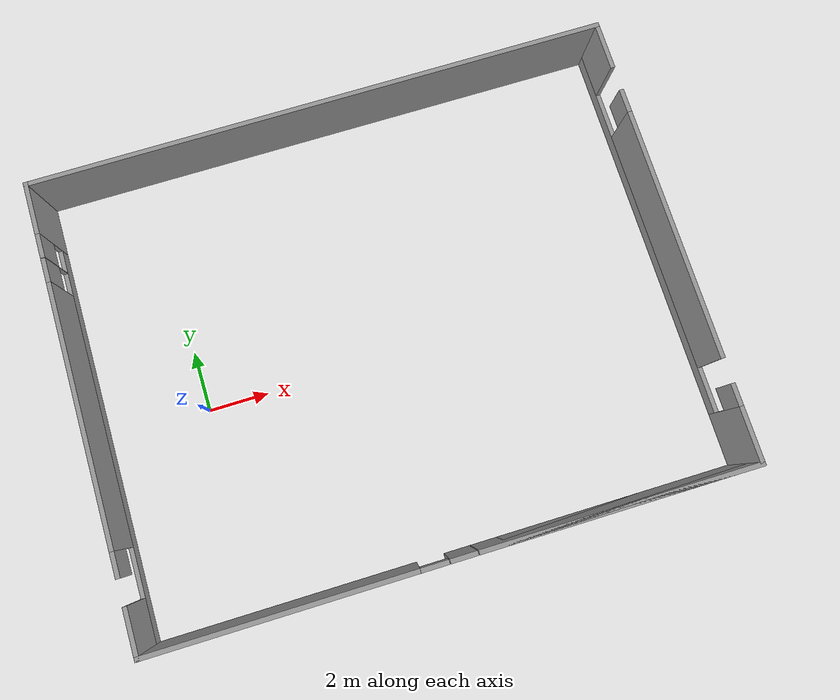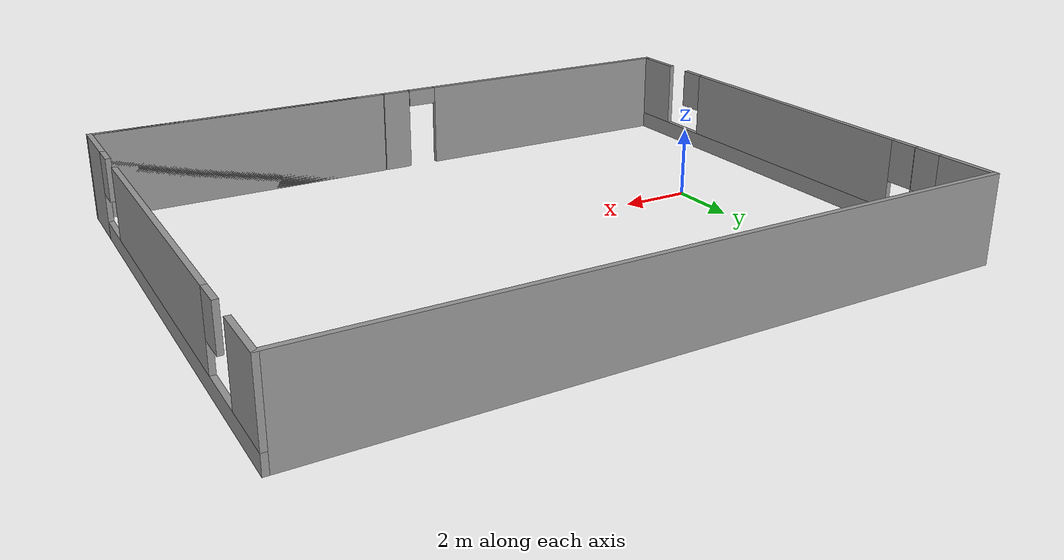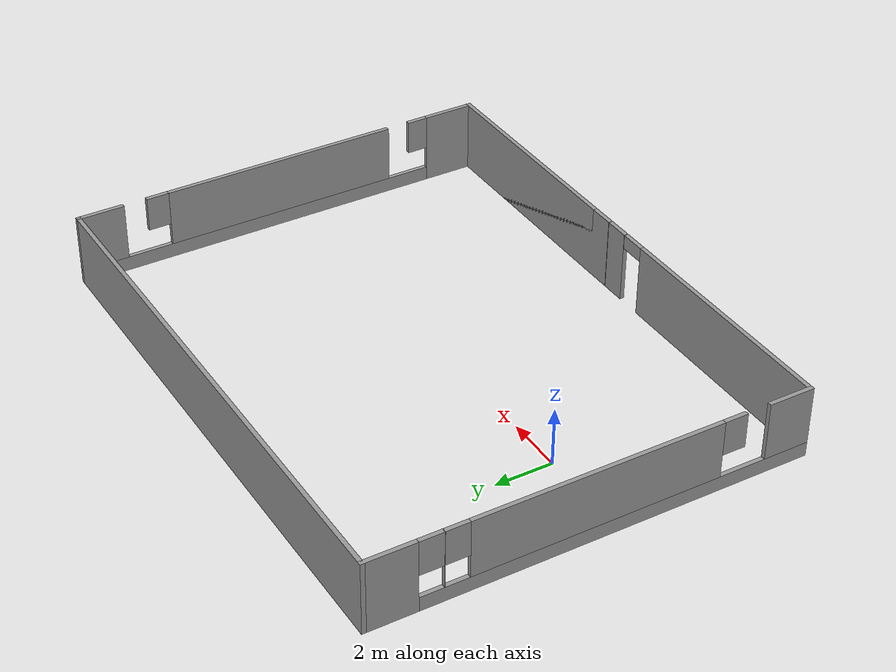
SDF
<?xml version='1.0'?>
<sdf version='1.6'>
  <model name='workspace2.0'>
    <pose frame=''>6.18297 0.808242 0 0 -0 0</pose>
    <link name='Wall_12'>
      <pose frame=''>9.55 0 0 0 -0 1.5708</pose>
      <visual name='Wall_12_Visual_0'>
        <pose frame=''>-6.566 0 1.25 0 -0 0</pose>
        <geometry>
          <box>
            <size>1.8685 0.15 2.5</size>
          </box>
        </geometry>
        <material>
          <script>
            <uri>file://media/materials/scripts/gazebo.material</uri>
            <name>Gazebo/Grey</name>
          </script>
          <ambient>1 1 1 1</ambient>
        </material>
        <meta>
          <layer>0</layer>
        </meta>
      </visual>
      <collision name='Wall_12_Collision_0'>
        <geometry>
          <box>
            <size>1.8685 0.15 2.5</size>
          </box>
        </geometry>
        <pose frame=''>-6.566 0 1.25 0 -0 0</pose>
      </collision>
      <visual name='Wall_12_Visual_1'>
        <pose frame=''>0.934248 0 0.25 0 -0 0</pose>
        <geometry>
          <box>
            <size>13.132 0.15 0.5</size>
          </box>
        </geometry>
        <material>
          <script>
            <uri>file://media/materials/scripts/gazebo.material</uri>
            <name>Gazebo/Grey</name>
          </script>
          <ambient>1 1 1 1</ambient>
        </material>
        <meta>
          <layer>0</layer>
        </meta>
      </visual>
      <collision name='Wall_12_Collision_1'>
        <geometry>
          <box>
            <size>13.132 0.15 0.5</size>
          </box>
        </geometry>
        <pose frame=''>0.934248 0 0.25 0 -0 0</pose>
      </collision>
      <visual name='Wall_12_Visual_2'>
        <pose frame=''>0.072569 0 1.5 0 -0 0</pose>
        <geometry>
          <box>
            <size>8.36165 0.15 2</size>
          </box>
        </geometry>
        <material>
          <script>
            <uri>file://media/materials/scripts/gazebo.material</uri>
            <name>Gazebo/Grey</name>
          </script>
          <ambient>1 1 1 1</ambient>
        </material>
        <meta>
          <layer>0</layer>
        </meta>
      </visual>
      <collision name='Wall_12_Collision_2'>
        <geometry>
          <box>
            <size>8.36165 0.15 2</size>
          </box>
        </geometry>
        <pose frame=''>0.072569 0 1.5 0 -0 0</pose>
      </collision>
      <visual name='Wall_12_Visual_3'>
        <pose frame=''>6.67282 0 1.5 0 -0 0</pose>
        <geometry>
          <box>
            <size>1.65485 0.15 2</size>
          </box>
        </geometry>
        <material>
          <script>
            <uri>file://media/materials/scripts/gazebo.material</uri>
            <name>Gazebo/Grey</name>
          </script>
          <ambient>1 1 1 1</ambient>
        </material>
        <meta>
          <layer>0</layer>
        </meta>
      </visual>
      <collision name='Wall_12_Collision_3'>
        <geometry>
          <box>
            <size>1.65485 0.15 2</size>
          </box>
        </geometry>
        <pose frame=''>6.67282 0 1.5 0 -0 0</pose>
      </collision>
      <visual name='Wall_12_Visual_4'>
        <pose frame=''>-5.27 0 1.9 0 -0 0</pose>
        <geometry>
          <box>
            <size>0.72349 0.15 1.2</size>
          </box>
        </geometry>
        <material>
          <script>
            <uri>file://media/materials/scripts/gazebo.material</uri>
            <name>Gazebo/Grey</name>
          </script>
          <ambient>1 1 1 1</ambient>
        </material>
        <meta>
          <layer>0</layer>
        </meta>
      </visual>
      <collision name='Wall_12_Collision_4'>
        <geometry>
          <box>
            <size>0.72349 0.15 1.2</size>
          </box>
        </geometry>
        <pose frame=''>-5.27 0 1.9 0 -0 0</pose>
      </collision>
      <visual name='Wall_12_Visual_5'>
        <pose frame=''>4.64939 0 1.9 0 -0 0</pose>
        <geometry>
          <box>
            <size>0.791998 0.15 1.2</size>
          </box>
        </geometry>
        <material>
          <script>
            <uri>file://media/materials/scripts/gazebo.material</uri>
            <name>Gazebo/Grey</name>
          </script>
          <ambient>1 1 1 1</ambient>
        </material>
        <meta>
          <layer>0</layer>
        </meta>
      </visual>
      <collision name='Wall_12_Collision_5'>
        <geometry>
          <box>
            <size>0.791998 0.15 1.2</size>
          </box>
        </geometry>
        <pose frame=''>4.64939 0 1.9 0 -0 0</pose>
      </collision>
    </link>
    <link name='Wall_13'>
      <collision name='Wall_13_Collision'>
        <geometry>
          <box>
            <size>19.25 0.15 2.5</size>
          </box>
        </geometry>
        <pose frame=''>0 0 1.25 0 -0 0</pose>
      </collision>
      <visual name='Wall_13_Visual'>
        <pose frame=''>0 0 1.25 0 -0 0</pose>
        <geometry>
          <box>
            <size>19.25 0.15 2.5</size>
          </box>
        </geometry>
        <material>
          <script>
            <uri>file://media/materials/scripts/gazebo.material</uri>
            <name>Gazebo/Grey</name>
          </script>
          <ambient>1 1 1 1</ambient>
        </material>
        <meta>
          <layer>0</layer>
        </meta>
      </visual>
      <pose frame=''>-3e-05 7.42524 0 0 -0 3.14159</pose>
    </link>
    <link name='Wall_14'>
      <pose frame=''>-9.55003 0.000242 0 0 0 -1.5708</pose>
      <visual name='Wall_14_Visual_0'>
        <pose frame=''>-6.61251 0 1.25 0 -0 0</pose>
        <geometry>
          <box>
            <size>1.77498 0.15 2.5</size>
          </box>
        </geometry>
        <material>
          <script>
            <uri>file://media/materials/scripts/gazebo.material</uri>
            <name>Gazebo/Grey</name>
          </script>
          <ambient>1 1 1 1</ambient>
        </material>
        <meta>
          <layer>0</layer>
        </meta>
      </visual>
      <collision name='Wall_14_Collision_0'>
        <geometry>
          <box>
            <size>1.77498 0.15 2.5</size>
          </box>
        </geometry>
        <pose frame=''>-6.61251 0 1.25 0 -0 0</pose>
      </collision>
      <visual name='Wall_14_Visual_1'>
        <pose frame=''>0.887492 0 0.25 0 -0 0</pose>
        <geometry>
          <box>
            <size>13.225 0.15 0.5</size>
          </box>
        </geometry>
        <material>
          <script>
            <uri>file://media/materials/scripts/gazebo.material</uri>
            <name>Gazebo/Grey</name>
          </script>
          <ambient>1 1 1 1</ambient>
        </material>
        <meta>
          <layer>0</layer>
        </meta>
      </visual>
      <collision name='Wall_14_Collision_1'>
        <geometry>
          <box>
            <size>13.225 0.15 0.5</size>
          </box>
        </geometry>
        <pose frame=''>0.887492 0 0.25 0 -0 0</pose>
      </collision>
      <visual name='Wall_14_Visual_2'>
        <pose frame=''>-4.91754 0 1.5 0 -0 0</pose>
        <geometry>
          <box>
            <size>0.014951 0.15 2</size>
          </box>
        </geometry>
        <material>
          <script>
            <uri>file://media/materials/scripts/gazebo.material</uri>
            <name>Gazebo/Grey</name>
          </script>
          <ambient>1 1 1 1</ambient>
        </material>
        <meta>
          <layer>0</layer>
        </meta>
      </visual>
      <collision name='Wall_14_Collision_2'>
        <geometry>
          <box>
            <size>0.014951 0.15 2</size>
          </box>
        </geometry>
        <pose frame=''>-4.91754 0 1.5 0 -0 0</pose>
      </collision>
      <visual name='Wall_14_Visual_3'>
        <pose frame=''>0.105623 0 1.5 0 -0 0</pose>
        <geometry>
          <box>
            <size>8.43138 0.15 2</size>
          </box>
        </geometry>
        <material>
          <script>
            <uri>file://media/materials/scripts/gazebo.material</uri>
            <name>Gazebo/Grey</name>
          </script>
          <ambient>1 1 1 1</ambient>
        </material>
        <meta>
          <layer>0</layer>
        </meta>
      </visual>
      <collision name='Wall_14_Collision_3'>
        <geometry>
          <box>
            <size>8.43138 0.15 2</size>
          </box>
        </geometry>
        <pose frame=''>0.105623 0 1.5 0 -0 0</pose>
      </collision>
      <visual name='Wall_14_Visual_4'>
        <pose frame=''>6.71045 0 1.5 0 -0 0</pose>
        <geometry>
          <box>
            <size>1.5791 0.15 2</size>
          </box>
        </geometry>
        <material>
          <script>
            <uri>file://media/materials/scripts/gazebo.material</uri>
            <name>Gazebo/Grey</name>
          </script>
          <ambient>1 1 1 1</ambient>
        </material>
        <meta>
          <layer>0</layer>
        </meta>
      </visual>
      <collision name='Wall_14_Collision_4'>
        <geometry>
          <box>
            <size>1.5791 0.15 2</size>
          </box>
        </geometry>
        <pose frame=''>6.71045 0 1.5 0 -0 0</pose>
      </collision>
      <visual name='Wall_14_Visual_5'>
        <pose frame=''>-5.32502 0 1.9 0 -0 0</pose>
        <geometry>
          <box>
            <size>0.8 0.15 1.2</size>
          </box>
        </geometry>
        <material>
          <script>
            <uri>file://media/materials/scripts/gazebo.material</uri>
            <name>Gazebo/Grey</name>
          </script>
          <ambient>1 1 1 1</ambient>
        </material>
        <meta>
          <layer>0</layer>
        </meta>
      </visual>
      <collision name='Wall_14_Collision_5'>
        <geometry>
          <box>
            <size>0.8 0.15 1.2</size>
          </box>
        </geometry>
        <pose frame=''>-5.32502 0 1.9 0 -0 0</pose>
      </collision>
      <visual name='Wall_14_Visual_6'>
        <pose frame=''>-4.51006 0 1.9 0 -0 0</pose>
        <geometry>
          <box>
            <size>0.8 0.15 1.2</size>
          </box>
        </geometry>
        <material>
          <script>
            <uri>file://media/materials/scripts/gazebo.material</uri>
            <name>Gazebo/Grey</name>
          </script>
          <ambient>1 1 1 1</ambient>
        </material>
        <meta>
          <layer>0</layer>
        </meta>
      </visual>
      <collision name='Wall_14_Collision_6'>
        <geometry>
          <box>
            <size>0.8 0.15 1.2</size>
          </box>
        </geometry>
        <pose frame=''>-4.51006 0 1.9 0 -0 0</pose>
      </collision>
      <visual name='Wall_14_Visual_7'>
        <pose frame=''>4.7211 0 1.9 0 -0 0</pose>
        <geometry>
          <box>
            <size>0.799589 0.15 1.2</size>
          </box>
        </geometry>
        <material>
          <script>
            <uri>file://media/materials/scripts/gazebo.material</uri>
            <name>Gazebo/Grey</name>
          </script>
          <ambient>1 1 1 1</ambient>
        </material>
        <meta>
          <layer>0</layer>
        </meta>
      </visual>
      <collision name='Wall_14_Collision_7'>
        <geometry>
          <box>
            <size>0.799589 0.15 1.2</size>
          </box>
        </geometry>
        <pose frame=''>4.7211 0 1.9 0 -0 0</pose>
      </collision>
    </link>
    <link name='Wall_9'>
      <pose frame=''>2.9e-05 -7.42524 0 0 -0 0</pose>
      <visual name='Wall_9_Visual_0'>
        <pose frame=''>-5.35922 0 1.25 0 -0 0</pose>
        <geometry>
          <box>
            <size>8.53156 0.15 2.5</size>
          </box>
        </geometry>
        <material>
          <script>
            <uri>file://media/materials/scripts/gazebo.material</uri>
            <name>Gazebo/Grey</name>
          </script>
          <ambient>1 1 1 1</ambient>
        </material>
        <meta>
          <layer>0</layer>
        </meta>
      </visual>
      <collision name='Wall_9_Collision_0'>
        <geometry>
          <box>
            <size>8.53156 0.15 2.5</size>
          </box>
        </geometry>
        <pose frame=''>-5.35922 0 1.25 0 -0 0</pose>
      </collision>
      <visual name='Wall_9_Visual_1'>
        <pose frame=''>0.237183 0 1.25 0 -0 0</pose>
        <geometry>
          <box>
            <size>0.861257 0.15 2.5</size>
          </box>
        </geometry>
        <material>
          <script>
            <uri>file://media/materials/scripts/gazebo.material</uri>
            <name>Gazebo/Grey</name>
          </script>
          <ambient>1 1 1 1</ambient>
        </material>
        <meta>
          <layer>0</layer>
        </meta>
      </visual>
      <collision name='Wall_9_Collision_1'>
        <geometry>
          <box>
            <size>0.861257 0.15 2.5</size>
          </box>
        </geometry>
        <pose frame=''>0.237183 0 1.25 0 -0 0</pose>
      </collision>
      <visual name='Wall_9_Visual_2'>
        <pose frame=''>5.15792 0 1.25 0 -0 0</pose>
        <geometry>
          <box>
            <size>8.93416 0.15 2.5</size>
          </box>
        </geometry>
        <material>
          <script>
            <uri>file://media/materials/scripts/gazebo.material</uri>
            <name>Gazebo/Grey</name>
          </script>
          <ambient>1 1 1 1</ambient>
        </material>
        <meta>
          <layer>0</layer>
        </meta>
      </visual>
      <collision name='Wall_9_Collision_2'>
        <geometry>
          <box>
            <size>8.93416 0.15 2.5</size>
          </box>
        </geometry>
        <pose frame=''>5.15792 0 1.25 0 -0 0</pose>
      </collision>
      <visual name='Wall_9_Visual_3'>
        <pose frame=''>5.59641 0 1.25 0 -0 0</pose>
        <geometry>
          <box>
            <size>8.05719 0.15 2.5</size>
          </box>
        </geometry>
        <material>
          <script>
            <uri>file://media/materials/scripts/gazebo.material</uri>
            <name>Gazebo/Grey</name>
          </script>
          <ambient>1 1 1 1</ambient>
        </material>
        <meta>
          <layer>0</layer>
        </meta>
      </visual>
      <collision name='Wall_9_Collision_3'>
        <geometry>
          <box>
            <size>8.05719 0.15 2.5</size>
          </box>
        </geometry>
        <pose frame=''>5.59641 0 1.25 0 -0 0</pose>
      </collision>
      <visual name='Wall_9_Visual_4'>
        <pose frame=''>-0.651301 0 2.25 0 -0 0</pose>
        <geometry>
          <box>
            <size>0.884289 0.15 0.5</size>
          </box>
        </geometry>
        <material>
          <script>
            <uri>file://media/materials/scripts/gazebo.material</uri>
            <name>Gazebo/Grey</name>
          </script>
          <ambient>1 1 1 1</ambient>
        </material>
        <meta>
          <layer>0</layer>
        </meta>
      </visual>
      <collision name='Wall_9_Collision_4'>
        <geometry>
          <box>
            <size>0.884289 0.15 0.5</size>
          </box>
        </geometry>
        <pose frame=''>-0.651301 0 2.25 0 -0 0</pose>
      </collision>
      <visual name='Wall_9_Visual_5'>
        <pose frame=''>0.679328 0 2.25 0 -0 0</pose>
        <geometry>
          <box>
            <size>0.023032 0.15 0.5</size>
          </box>
        </geometry>
        <material>
          <script>
            <uri>file://media/materials/scripts/gazebo.material</uri>
            <name>Gazebo/Grey</name>
          </script>
          <ambient>1 1 1 1</ambient>
        </material>
        <meta>
          <layer>0</layer>
        </meta>
      </visual>
      <collision name='Wall_9_Collision_5'>
        <geometry>
          <box>
            <size>0.023032 0.15 0.5</size>
          </box>
        </geometry>
        <pose frame=''>0.679328 0 2.25 0 -0 0</pose>
      </collision>
    </link>
    <static>1</static>
  </model>
</sdf>
